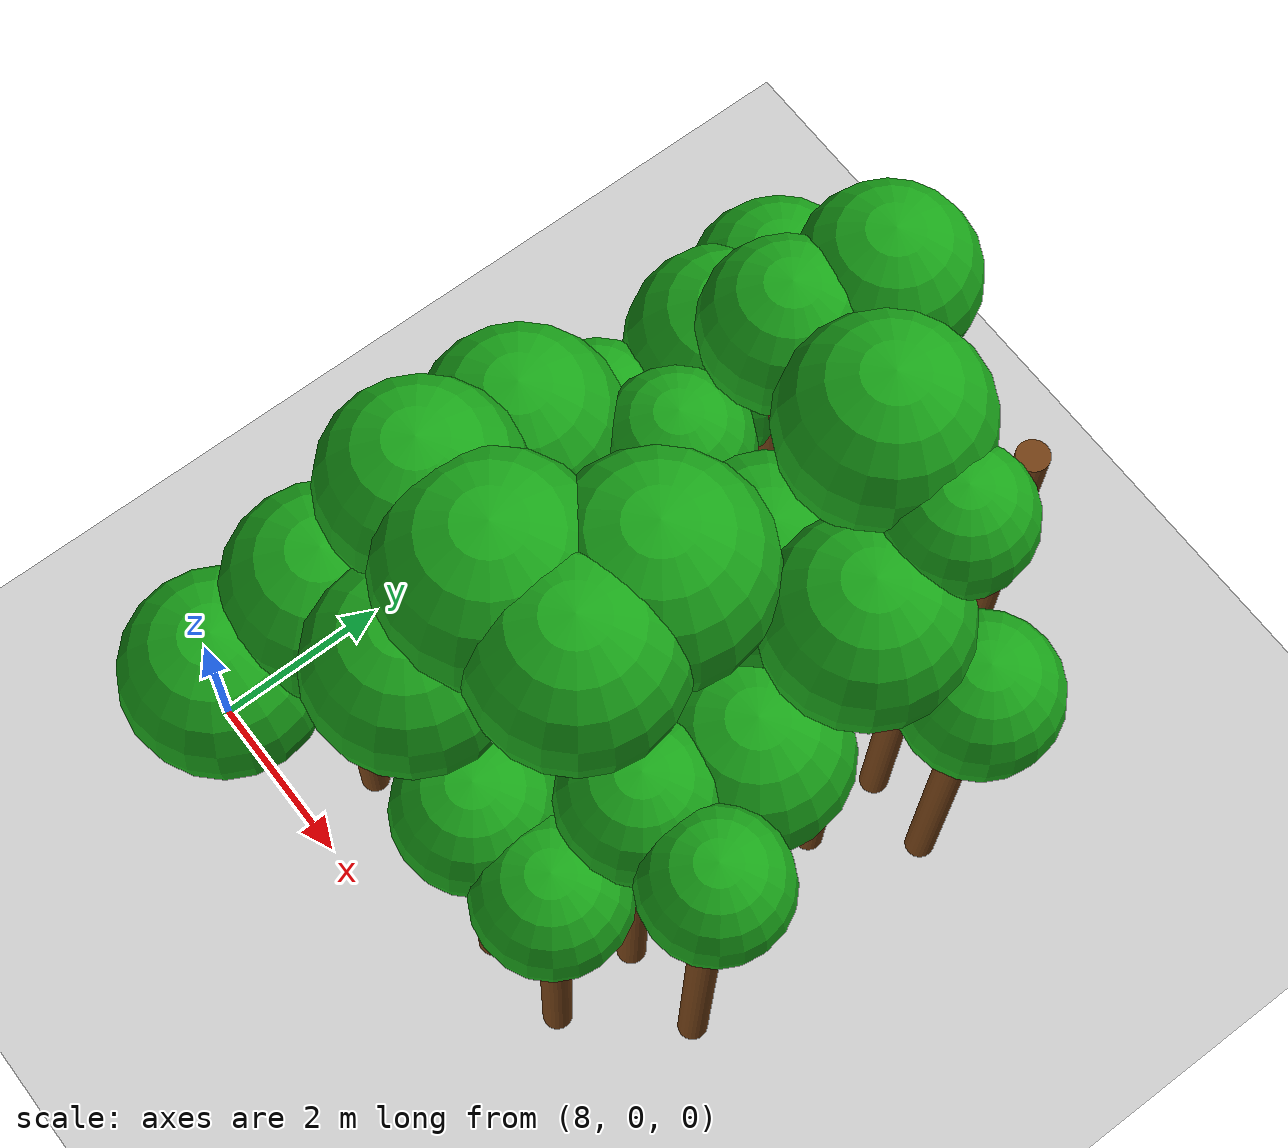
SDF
<sdf version="1.6">
 <world name="forest_world">
  <include><uri>model://sun</uri></include>
  <include><uri>model://ground_plane</uri></include>
  <model name="tree_1984_leaf">
   <static>true</static>
   <pose>9.45 -0.29 4.88 0 0 0</pose>
   <link name="link">
    <collision name="collision"><geometry><sphere><radius>1.00</radius></sphere></geometry></collision>
    <visual name="visual">
     <geometry><sphere><radius>1.00</radius></sphere></geometry>
     <material><ambient>0.05 0.45 0.05 1</ambient><diffuse>0.10 0.65 0.10 1</diffuse></material>
    </visual>
   </link>
  </model>
  <model name="tree_1985_trunk">
   <static>true</static>
   <pose>9.62 0.86 2.43 0 0 0</pose>
   <link name="link">
    <collision name="collision">
     <geometry><cylinder><radius>0.16</radius><length>4.87</length></cylinder></geometry>
    </collision>
    <visual name="visual">
     <geometry><cylinder><radius>0.16</radius><length>4.87</length></cylinder></geometry>
     <material><ambient>0.35 0.20 0.05 1</ambient><diffuse>0.45 0.25 0.08 1</diffuse></material>
    </visual>
   </link>
  </model>
  <model name="tree_1985_leaf">
   <static>true</static>
   <pose>9.62 0.86 5.49 0 0 0</pose>
   <link name="link">
    <collision name="collision"><geometry><sphere><radius>1.04</radius></sphere></geometry></collision>
    <visual name="visual">
     <geometry><sphere><radius>1.04</radius></sphere></geometry>
     <material><ambient>0.05 0.45 0.05 1</ambient><diffuse>0.10 0.65 0.10 1</diffuse></material>
    </visual>
   </link>
  </model>
  <model name="tree_1986_trunk">
   <static>true</static>
   <pose>9.76 1.88 3.08 0 0 0</pose>
   <link name="link">
    <collision name="collision">
     <geometry><cylinder><radius>0.16</radius><length>6.16</length></cylinder></geometry>
    </collision>
    <visual name="visual">
     <geometry><cylinder><radius>0.16</radius><length>6.16</length></cylinder></geometry>
     <material><ambient>0.35 0.20 0.05 1</ambient><diffuse>0.45 0.25 0.08 1</diffuse></material>
    </visual>
   </link>
  </model>
  <model name="tree_1986_leaf">
   <static>true</static>
   <pose>9.76 1.88 6.75 0 0 0</pose>
   <link name="link">
    <collision name="collision"><geometry><sphere><radius>0.98</radius></sphere></geometry></collision>
    <visual name="visual">
     <geometry><sphere><radius>0.98</radius></sphere></geometry>
     <material><ambient>0.05 0.45 0.05 1</ambient><diffuse>0.10 0.65 0.10 1</diffuse></material>
    </visual>
   </link>
  </model>
  <model name="tree_1987_trunk">
   <static>true</static>
   <pose>9.52 3.11 2.64 0 0 0</pose>
   <link name="link">
    <collision name="collision">
     <geometry><cylinder><radius>0.16</radius><length>5.27</length></cylinder></geometry>
    </collision>
    <visual name="visual">
     <geometry><cylinder><radius>0.16</radius><length>5.27</length></cylinder></geometry>
     <material><ambient>0.35 0.20 0.05 1</ambient><diffuse>0.45 0.25 0.08 1</diffuse></material>
    </visual>
   </link>
  </model>
  <model name="tree_1987_leaf">
   <static>true</static>
   <pose>9.52 3.11 5.88 0 0 0</pose>
   <link name="link">
    <collision name="collision"><geometry><sphere><radius>1.01</radius></sphere></geometry></collision>
    <visual name="visual">
     <geometry><sphere><radius>1.01</radius></sphere></geometry>
     <material><ambient>0.05 0.45 0.05 1</ambient><diffuse>0.10 0.65 0.10 1</diffuse></material>
    </visual>
   </link>
  </model>
  <model name="tree_1988_trunk">
   <static>true</static>
   <pose>9.51 4.00 2.26 0 0 0</pose>
   <link name="link">
    <collision name="collision">
     <geometry><cylinder><radius>0.16</radius><length>4.52</length></cylinder></geometry>
    </collision>
    <visual name="visual">
     <geometry><cylinder><radius>0.16</radius><length>4.52</length></cylinder></geometry>
     <material><ambient>0.35 0.20 0.05 1</ambient><diffuse>0.45 0.25 0.08 1</diffuse></material>
    </visual>
   </link>
  </model>
  <model name="tree_1988_leaf">
   <static>true</static>
   <pose>9.51 4.00 4.99 0 0 0</pose>
   <link name="link">
    <collision name="collision"><geometry><sphere><radius>0.79</radius></sphere></geometry></collision>
    <visual name="visual">
     <geometry><sphere><radius>0.79</radius></sphere></geometry>
     <material><ambient>0.05 0.45 0.05 1</ambient><diffuse>0.10 0.65 0.10 1</diffuse></material>
    </visual>
   </link>
  </model>
  <model name="tree_1989_trunk">
   <static>true</static>
   <pose>9.74 5.38 2.32 0 0 0</pose>
   <link name="link">
    <collision name="collision">
     <geometry><cylinder><radius>0.16</radius><length>4.63</length></cylinder></geometry>
    </collision>
    <visual name="visual">
     <geometry><cylinder><radius>0.16</radius><length>4.63</length></cylinder></geometry>
     <material><ambient>0.35 0.20 0.05 1</ambient><diffuse>0.45 0.25 0.08 1</diffuse></material>
    </visual>
   </link>
  </model>
  <model name="tree_1989_leaf">
   <static>true</static>
   <pose>9.74 5.38 5.24 0 0 0</pose>
   <link name="link">
    <collision name="collision"><geometry><sphere><radius>1.01</radius></sphere></geometry></collision>
    <visual name="visual">
     <geometry><sphere><radius>1.01</radius></sphere></geometry>
     <material><ambient>0.05 0.45 0.05 1</ambient><diffuse>0.10 0.65 0.10 1</diffuse></material>
    </visual>
   </link>
  </model>
  <model name="tree_1990_trunk">
   <static>true</static>
   <pose>9.55 6.16 2.34 0 0 0</pose>
   <link name="link">
    <collision name="collision">
     <geometry><cylinder><radius>0.16</radius><length>4.68</length></cylinder></geometry>
    </collision>
    <visual name="visual">
     <geometry><cylinder><radius>0.16</radius><length>4.68</length></cylinder></geometry>
     <material><ambient>0.35 0.20 0.05 1</ambient><diffuse>0.45 0.25 0.08 1</diffuse></material>
    </visual>
   </link>
  </model>
  <model name="tree_1990_leaf">
   <static>true</static>
   <pose>9.55 6.16 5.23 0 0 0</pose>
   <link name="link">
    <collision name="collision"><geometry><sphere><radius>0.91</radius></sphere></geometry></collision>
    <visual name="visual">
     <geometry><sphere><radius>0.91</radius></sphere></geometry>
     <material><ambient>0.05 0.45 0.05 1</ambient><diffuse>0.10 0.65 0.10 1</diffuse></material>
    </visual>
   </link>
  </model>
  <model name="tree_2040_trunk">
   <static>true</static>
   <pose>10.81 0.95 2.69 0 0 0</pose>
   <link name="link">
    <collision name="collision">
     <geometry><cylinder><radius>0.16</radius><length>5.38</length></cylinder></geometry>
    </collision>
    <visual name="visual">
     <geometry><cylinder><radius>0.16</radius><length>5.38</length></cylinder></geometry>
     <material><ambient>0.35 0.20 0.05 1</ambient><diffuse>0.45 0.25 0.08 1</diffuse></material>
    </visual>
   </link>
  </model>
  <model name="tree_2040_leaf">
   <static>true</static>
   <pose>10.81 0.95 5.99 0 0 0</pose>
   <link name="link">
    <collision name="collision"><geometry><sphere><radius>1.02</radius></sphere></geometry></collision>
    <visual name="visual">
     <geometry><sphere><radius>1.02</radius></sphere></geometry>
     <material><ambient>0.05 0.45 0.05 1</ambient><diffuse>0.10 0.65 0.10 1</diffuse></material>
    </visual>
   </link>
  </model>
  <model name="tree_2041_trunk">
   <static>true</static>
   <pose>10.86 1.85 3.13 0 0 0</pose>
   <link name="link">
    <collision name="collision">
     <geometry><cylinder><radius>0.16</radius><length>6.25</length></cylinder></geometry>
    </collision>
    <visual name="visual">
     <geometry><cylinder><radius>0.16</radius><length>6.25</length></cylinder></geometry>
     <material><ambient>0.35 0.20 0.05 1</ambient><diffuse>0.45 0.25 0.08 1</diffuse></material>
    </visual>
   </link>
  </model>
  <model name="tree_2041_leaf">
   <static>true</static>
   <pose>10.86 1.85 6.91 0 0 0</pose>
   <link name="link">
    <collision name="collision"><geometry><sphere><radius>1.10</radius></sphere></geometry></collision>
    <visual name="visual">
     <geometry><sphere><radius>1.10</radius></sphere></geometry>
     <material><ambient>0.05 0.45 0.05 1</ambient><diffuse>0.10 0.65 0.10 1</diffuse></material>
    </visual>
   </link>
  </model>
  <model name="tree_2042_trunk">
   <static>true</static>
   <pose>10.65 2.84 2.38 0 0 0</pose>
   <link name="link">
    <collision name="collision">
     <geometry><cylinder><radius>0.16</radius><length>4.76</length></cylinder></geometry>
    </collision>
    <visual name="visual">
     <geometry><cylinder><radius>0.16</radius><length>4.76</length></cylinder></geometry>
     <material><ambient>0.35 0.20 0.05 1</ambient><diffuse>0.45 0.25 0.08 1</diffuse></material>
    </visual>
   </link>
  </model>
  <model name="tree_2042_leaf">
   <static>true</static>
   <pose>10.65 2.84 5.22 0 0 0</pose>
   <link name="link">
    <collision name="collision"><geometry><sphere><radius>0.77</radius></sphere></geometry></collision>
    <visual name="visual">
     <geometry><sphere><radius>0.77</radius></sphere></geometry>
     <material><ambient>0.05 0.45 0.05 1</ambient><diffuse>0.10 0.65 0.10 1</diffuse></material>
    </visual>
   </link>
  </model>
  <model name="tree_2043_trunk">
   <static>true</static>
   <pose>10.52 4.14 2.74 0 0 0</pose>
   <link name="link">
    <collision name="collision">
     <geometry><cylinder><radius>0.16</radius><length>5.47</length></cylinder></geometry>
    </collision>
    <visual name="visual">
     <geometry><cylinder><radius>0.16</radius><length>5.47</length></cylinder></geometry>
     <material><ambient>0.35 0.20 0.05 1</ambient><diffuse>0.45 0.25 0.08 1</diffuse></material>
    </visual>
   </link>
  </model>
  <model name="tree_2043_leaf">
   <static>true</static>
   <pose>10.52 4.14 5.92 0 0 0</pose>
   <link name="link">
    <collision name="collision"><geometry><sphere><radius>0.75</radius></sphere></geometry></collision>
    <visual name="visual">
     <geometry><sphere><radius>0.75</radius></sphere></geometry>
     <material><ambient>0.05 0.45 0.05 1</ambient><diffuse>0.10 0.65 0.10 1</diffuse></material>
    </visual>
   </link>
  </model>
  <model name="tree_2044_trunk">
   <static>true</static>
   <pose>10.59 5.27 3.29 0 0 0</pose>
   <link name="link">
    <collision name="collision">
     <geometry><cylinder><radius>0.16</radius><length>6.58</length></cylinder></geometry>
    </collision>
    <visual name="visual">
     <geometry><cylinder><radius>0.16</radius><length>6.58</length></cylinder></geometry>
     <material><ambient>0.35 0.20 0.05 1</ambient><diffuse>0.45 0.25 0.08 1</diffuse></material>
    </visual>
   </link>
  </model>
  <model name="tree_2044_leaf">
   <static>true</static>
   <pose>10.59 5.27 7.08 0 0 0</pose>
   <link name="link">
    <collision name="collision"><geometry><sphere><radius>0.82</radius></sphere></geometry></collision>
    <visual name="visual">
     <geometry><sphere><radius>0.82</radius></sphere></geometry>
     <material><ambient>0.05 0.45 0.05 1</ambient><diffuse>0.10 0.65 0.10 1</diffuse></material>
    </visual>
   </link>
  </model>
  <model name="tree_2045_trunk">
   <static>true</static>
   <pose>10.78 6.24 3.33 0 0 0</pose>
   <link name="link">
    <collision name="collision">
     <geometry><cylinder><radius>0.16</radius><length>6.65</length></cylinder></geometry>
    </collision>
    <visual name="visual">
     <geometry><cylinder><radius>0.16</radius><length>6.65</length></cylinder></geometry>
     <material><ambient>0.35 0.20 0.05 1</ambient><diffuse>0.45 0.25 0.08 1</diffuse></material>
    </visual>
   </link>
  </model>
  <model name="tree_2045_leaf">
   <static>true</static>
   <pose>10.78 6.24 7.18 0 0 0</pose>
   <link name="link">
    <collision name="collision"><geometry><sphere><radius>0.87</radius></sphere></geometry></collision>
    <visual name="visual">
     <geometry><sphere><radius>0.87</radius></sphere></geometry>
     <material><ambient>0.05 0.45 0.05 1</ambient><diffuse>0.10 0.65 0.10 1</diffuse></material>
    </visual>
   </link>
  </model>
  <model name="tree_2095_trunk">
   <static>true</static>
   <pose>11.90 0.80 2.15 0 0 0</pose>
   <link name="link">
    <collision name="collision">
     <geometry><cylinder><radius>0.16</radius><length>4.29</length></cylinder></geometry>
    </collision>
    <visual name="visual">
     <geometry><cylinder><radius>0.16</radius><length>4.29</length></cylinder></geometry>
     <material><ambient>0.35 0.20 0.05 1</ambient><diffuse>0.45 0.25 0.08 1</diffuse></material>
    </visual>
   </link>
  </model>
  <model name="tree_2095_leaf">
   <static>true</static>
   <pose>11.90 0.80 4.78 0 0 0</pose>
   <link name="link">
    <collision name="collision"><geometry><sphere><radius>0.81</radius></sphere></geometry></collision>
    <visual name="visual">
     <geometry><sphere><radius>0.81</radius></sphere></geometry>
     <material><ambient>0.05 0.45 0.05 1</ambient><diffuse>0.10 0.65 0.10 1</diffuse></material>
    </visual>
   </link>
  </model>
  <model name="tree_2096_trunk">
   <static>true</static>
   <pose>11.92 1.94 3.16 0 0 0</pose>
   <link name="link">
    <collision name="collision">
     <geometry><cylinder><radius>0.16</radius><length>6.31</length></cylinder></geometry>
    </collision>
    <visual name="visual">
     <geometry><cylinder><radius>0.16</radius><length>6.31</length></cylinder></geometry>
     <material><ambient>0.35 0.20 0.05 1</ambient><diffuse>0.45 0.25 0.08 1</diffuse></material>
    </visual>
   </link>
  </model>
  <model name="tree_2096_leaf">
   <static>true</static>
   <pose>11.92 1.94 6.92 0 0 0</pose>
   <link name="link">
    <collision name="collision"><geometry><sphere><radius>1.02</radius></sphere></geometry></collision>
    <visual name="visual">
     <geometry><sphere><radius>1.02</radius></sphere></geometry>
     <material><ambient>0.05 0.45 0.05 1</ambient><diffuse>0.10 0.65 0.10 1</diffuse></material>
    </visual>
   </link>
  </model>
  <model name="tree_2097_trunk">
   <static>true</static>
   <pose>11.69 2.99 3.11 0 0 0</pose>
   <link name="link">
    <collision name="collision">
     <geometry><cylinder><radius>0.16</radius><length>6.23</length></cylinder></geometry>
    </collision>
    <visual name="visual">
     <geometry><cylinder><radius>0.16</radius><length>6.23</length></cylinder></geometry>
     <material><ambient>0.35 0.20 0.05 1</ambient><diffuse>0.45 0.25 0.08 1</diffuse></material>
    </visual>
   </link>
  </model>
  <model name="tree_2097_leaf">
   <static>true</static>
   <pose>11.69 2.99 6.88 0 0 0</pose>
   <link name="link">
    <collision name="collision"><geometry><sphere><radius>1.09</radius></sphere></geometry></collision>
    <visual name="visual">
     <geometry><sphere><radius>1.09</radius></sphere></geometry>
     <material><ambient>0.05 0.45 0.05 1</ambient><diffuse>0.10 0.65 0.10 1</diffuse></material>
    </visual>
   </link>
  </model>
  <model name="tree_2098_trunk">
   <static>true</static>
   <pose>11.91 4.09 2.58 0 0 0</pose>
   <link name="link">
    <collision name="collision">
     <geometry><cylinder><radius>0.16</radius><length>5.16</length></cylinder></geometry>
    </collision>
    <visual name="visual">
     <geometry><cylinder><radius>0.16</radius><length>5.16</length></cylinder></geometry>
     <material><ambient>0.35 0.20 0.05 1</ambient><diffuse>0.45 0.25 0.08 1</diffuse></material>
    </visual>
   </link>
  </model>
  <model name="tree_2098_leaf">
   <static>true</static>
   <pose>11.91 4.09 5.80 0 0 0</pose>
   <link name="link">
    <collision name="collision"><geometry><sphere><radius>1.06</radius></sphere></geometry></collision>
    <visual name="visual">
     <geometry><sphere><radius>1.06</radius></sphere></geometry>
     <material><ambient>0.05 0.45 0.05 1</ambient><diffuse>0.10 0.65 0.10 1</diffuse></material>
    </visual>
   </link>
  </model>
  <model name="tree_2099_trunk">
   <static>true</static>
   <pose>11.96 5.21 3.43 0 0 0</pose>
   <link name="link">
    <collision name="collision">
     <geometry><cylinder><radius>0.16</radius><length>6.86</length></cylinder></geometry>
    </collision>
    <visual name="visual">
     <geometry><cylinder><radius>0.16</radius><length>6.86</length></cylinder></geometry>
     <material><ambient>0.35 0.20 0.05 1</ambient><diffuse>0.45 0.25 0.08 1</diffuse></material>
    </visual>
   </link>
  </model>
  <model name="tree_2099_leaf">
   <static>true</static>
   <pose>11.96 5.21 7.45 0 0 0</pose>
   <link name="link">
    <collision name="collision"><geometry><sphere><radius>0.99</radius></sphere></geometry></collision>
    <visual name="visual">
     <geometry><sphere><radius>0.99</radius></sphere></geometry>
     <material><ambient>0.05 0.45 0.05 1</ambient><diffuse>0.10 0.65 0.10 1</diffuse></material>
    </visual>
   </link>
  </model>
  <model name="tree_2150_trunk">
   <static>true</static>
   <pose>12.96 0.87 2.12 0 0 0</pose>
   <link name="link">
    <collision name="collision">
     <geometry><cylinder><radius>0.16</radius><length>4.25</length></cylinder></geometry>
    </collision>
    <visual name="visual">
     <geometry><cylinder><radius>0.16</radius><length>4.25</length></cylinder></geometry>
     <material><ambient>0.35 0.20 0.05 1</ambient><diffuse>0.45 0.25 0.08 1</diffuse></material>
    </visual>
   </link>
  </model>
  <model name="tree_2150_leaf">
   <static>true</static>
   <pose>12.96 0.87 4.71 0 0 0</pose>
   <link name="link">
    <collision name="collision"><geometry><sphere><radius>0.77</radius></sphere></geometry></collision>
    <visual name="visual">
     <geometry><sphere><radius>0.77</radius></sphere></geometry>
     <material><ambient>0.05 0.45 0.05 1</ambient><diffuse>0.10 0.65 0.10 1</diffuse></material>
    </visual>
   </link>
  </model>
  <model name="tree_2151_trunk">
   <static>true</static>
   <pose>12.87 1.93 2.45 0 0 0</pose>
   <link name="link">
    <collision name="collision">
     <geometry><cylinder><radius>0.16</radius><length>4.89</length></cylinder></geometry>
    </collision>
    <visual name="visual">
     <geometry><cylinder><radius>0.16</radius><length>4.89</length></cylinder></geometry>
     <material><ambient>0.35 0.20 0.05 1</ambient><diffuse>0.45 0.25 0.08 1</diffuse></material>
    </visual>
   </link>
  </model>
  <model name="tree_2151_leaf">
   <static>true</static>
   <pose>12.87 1.93 5.37 0 0 0</pose>
   <link name="link">
    <collision name="collision"><geometry><sphere><radius>0.79</radius></sphere></geometry></collision>
    <visual name="visual">
     <geometry><sphere><radius>0.79</radius></sphere></geometry>
     <material><ambient>0.05 0.45 0.05 1</ambient><diffuse>0.10 0.65 0.10 1</diffuse></material>
    </visual>
   </link>
  </model>
  <model name="tree_2152_trunk">
   <static>true</static>
   <pose>13.07 3.06 2.28 0 0 0</pose>
   <link name="link">
    <collision name="collision">
     <geometry><cylinder><radius>0.16</radius><length>4.56</length></cylinder></geometry>
    </collision>
    <visual name="visual">
     <geometry><cylinder><radius>0.16</radius><length>4.56</length></cylinder></geometry>
     <material><ambient>0.35 0.20 0.05 1</ambient><diffuse>0.45 0.25 0.08 1</diffuse></material>
    </visual>
   </link>
  </model>
  <model name="tree_2152_leaf">
   <static>true</static>
   <pose>13.07 3.06 5.13 0 0 0</pose>
   <link name="link">
    <collision name="collision"><geometry><sphere><radius>0.96</radius></sphere></geometry></collision>
    <visual name="visual">
     <geometry><sphere><radius>0.96</radius></sphere></geometry>
     <material><ambient>0.05 0.45 0.05 1</ambient><diffuse>0.10 0.65 0.10 1</diffuse></material>
    </visual>
   </link>
  </model>
  <model name="tree_2153_trunk">
   <static>true</static>
   <pose>13.03 4.25 2.94 0 0 0</pose>
   <link name="link">
    <collision name="collision">
     <geometry><cylinder><radius>0.16</radius><length>5.88</length></cylinder></geometry>
    </collision>
    <visual name="visual">
     <geometry><cylinder><radius>0.16</radius><length>5.88</length></cylinder></geometry>
     <material><ambient>0.35 0.20 0.05 1</ambient><diffuse>0.45 0.25 0.08 1</diffuse></material>
    </visual>
   </link>
  </model>
  <model name="tree_2153_leaf">
   <static>true</static>
   <pose>13.03 4.25 6.47 0 0 0</pose>
   <link name="link">
    <collision name="collision"><geometry><sphere><radius>0.98</radius></sphere></geometry></collision>
    <visual name="visual">
     <geometry><sphere><radius>0.98</radius></sphere></geometry>
     <material><ambient>0.05 0.45 0.05 1</ambient><diffuse>0.10 0.65 0.10 1</diffuse></material>
    </visual>
   </link>
  </model>
  <model name="tree_2154_trunk">
   <static>true</static>
   <pose>12.96 5.24 3.38 0 0 0</pose>
   <link name="link">
    <collision name="collision">
     <geometry><cylinder><radius>0.16</radius><length>6.77</length></cylinder></geometry>
    </collision>
    <visual name="visual">
     <geometry><cylinder><radius>0.16</radius><length>6.77</length></cylinder></geometry>
     <material><ambient>0.35 0.20 0.05 1</ambient><diffuse>0.45 0.25 0.08 1</diffuse></material>
    </visual>
   </link>
  </model>
  <model name="tree_2154_leaf">
   <static>true</static>
   <pose>12.96 5.24 7.19 0 0 0</pose>
   <link name="link">
    <collision name="collision"><geometry><sphere><radius>0.71</radius></sphere></geometry></collision>
    <visual name="visual">
     <geometry><sphere><radius>0.71</radius></sphere></geometry>
     <material><ambient>0.05 0.45 0.05 1</ambient><diffuse>0.10 0.65 0.10 1</diffuse></material>
    </visual>
   </link>
  </model>
  <model name="tree_2155_trunk">
   <static>true</static>
   <pose>12.75 6.37 3.32 0 0 0</pose>
   <link name="link">
    <collision name="collision">
     <geometry><cylinder><radius>0.16</radius><length>6.64</length></cylinder></geometry>
    </collision>
    <visual name="visual">
     <geometry><cylinder><radius>0.16</radius><length>6.64</length></cylinder></geometry>
     <material><ambient>0.35 0.20 0.05 1</ambient><diffuse>0.45 0.25 0.08 1</diffuse></material>
    </visual>
   </link>
  </model>
  <model name="tree_2206_trunk">
   <static>true</static>
   <pose>13.92 1.95 2.52 0 0 0</pose>
   <link name="link">
    <collision name="collision">
     <geometry><cylinder><radius>0.16</radius><length>5.05</length></cylinder></geometry>
    </collision>
    <visual name="visual">
     <geometry><cylinder><radius>0.16</radius><length>5.05</length></cylinder></geometry>
     <material><ambient>0.35 0.20 0.05 1</ambient><diffuse>0.45 0.25 0.08 1</diffuse></material>
    </visual>
   </link>
  </model>
  <model name="tree_2206_leaf">
   <static>true</static>
   <pose>13.92 1.95 5.48 0 0 0</pose>
   <link name="link">
    <collision name="collision"><geometry><sphere><radius>0.73</radius></sphere></geometry></collision>
    <visual name="visual">
     <geometry><sphere><radius>0.73</radius></sphere></geometry>
     <material><ambient>0.05 0.45 0.05 1</ambient><diffuse>0.10 0.65 0.10 1</diffuse></material>
    </visual>
   </link>
  </model>
  <model name="tree_2209_trunk">
   <static>true</static>
   <pose>13.83 5.17 2.16 0 0 0</pose>
   <link name="link">
    <collision name="collision">
     <geometry><cylinder><radius>0.16</radius><length>4.31</length></cylinder></geometry>
    </collision>
    <visual name="visual">
     <geometry><cylinder><radius>0.16</radius><length>4.31</length></cylinder></geometry>
     <material><ambient>0.35 0.20 0.05 1</ambient><diffuse>0.45 0.25 0.08 1</diffuse></material>
    </visual>
   </link>
  </model>
  <model name="tree_2209_leaf">
   <static>true</static>
   <pose>13.83 5.17 4.80 0 0 0</pose>
   <link name="link">
    <collision name="collision"><geometry><sphere><radius>0.81</radius></sphere></geometry></collision>
    <visual name="visual">
     <geometry><sphere><radius>0.81</radius></sphere></geometry>
     <material><ambient>0.05 0.45 0.05 1</ambient><diffuse>0.10 0.65 0.10 1</diffuse></material>
    </visual>
   </link>
  </model>
 </world>
</sdf>
